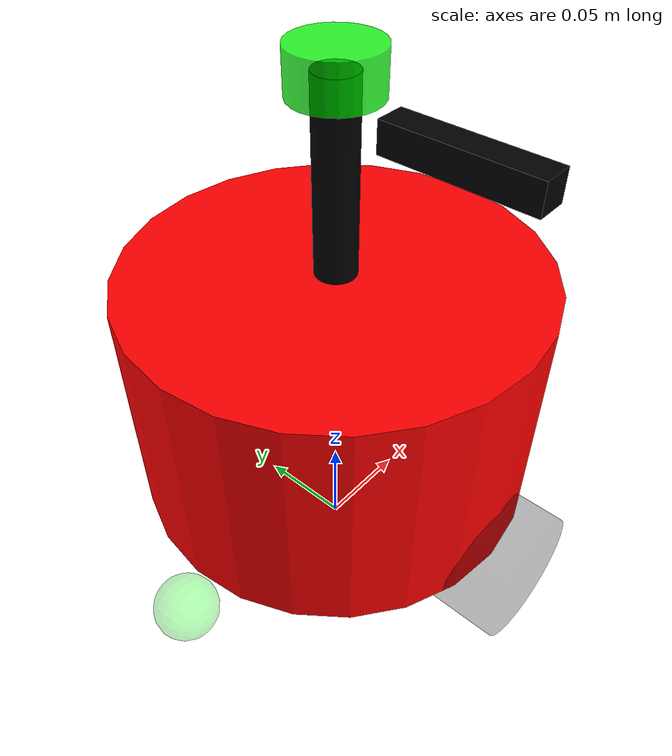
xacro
<?xml version="1.0"?>
<robot xmlns:xacro="http://www.ros.org/wiki/xacro" name="fishbot">
    <!-- 身体部分 -->
    <xacro:include filename="$(find fishbot_description)/urdf/fishbot/base.urdf.xacro" />

    <!-- 传感器组件 -->
    <xacro:include filename="$(find fishbot_description)/urdf/fishbot/sensor/imu.urdf.xacro" />
    <xacro:include filename="$(find fishbot_description)/urdf/fishbot/sensor/laser.urdf.xacro" />
    <xacro:include filename="$(find fishbot_description)/urdf/fishbot/sensor/camera.urdf.xacro" />

    <!-- 执行器部分 -->
    <xacro:include filename="$(find fishbot_description)/urdf/fishbot/actuator/wheel.urdf.xacro" />
    <xacro:include filename="$(find fishbot_description)/urdf/fishbot/actuator/caster.urdf.xacro" />

    <!-- gazebo插件 -->
    <xacro:include filename="$(find fishbot_description)/urdf/fishbot/plugins/gazebo_control_plugin.xacro" />
    <xacro:include filename="$(find fishbot_description)/urdf/fishbot/plugins/gazebo_sensor_plugin.xacro" />
    <xacro:include filename="$(find fishbot_description)/urdf/fishbot/fishbot.ros2_control.xacro" />

    <xacro:base_xacro length="0.12" radius="0.1" />
    <!-- 传感器 -->
    <xacro:imu_xacro xyz="0 0 0.02" />
    <xacro:laser_xacro xyz="0 0 0.10" />
    <xacro:camera_xacro xyz="0.10 0 0.075" />

    <xacro:wheel_xacro wheel_name="left_wheel" xyz="0 0.10 -0.06" />
    <xacro:wheel_xacro wheel_name="right_wheel" xyz="0 -0.10 -0.06" />
    <xacro:caster_xacro caster_name="front" xyz="0.11 0.0 -0.073" />  <!-- 前：外侧+抬高 -->
    <xacro:caster_xacro caster_name="back" xyz="-0.11 0.0 -0.079" />   <!-- 后：外侧+下沉 -->

    <xacro:gazebo_sensor_plugin />
    <xacro:fishbot_ros2_control />

</robot>

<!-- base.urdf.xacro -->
<robot xmlns:xacro="http://www.ros.org/wiki/xacro">
    <!-- 调用机器人的质量和惯性 -->
    <xacro:include filename="$(find fishbot_description)/urdf/fishbot/common_inertia.xacro" />

    <!-- 声明base模块 -->
    <xacro:macro name="base_xacro" params="length radius">
    <link name="base_footprint"/>
        <link name="base_link">

        <visual>
            <!-- 沿着自己几何中心的偏移和旋转量 -->
            <origin xyz="0.0 0.0 0.0" rpy="0.0 0.0 0.0"/>
            <geometry>
                <!-- 圆柱 半径0.10m 高度 length=0.12m -->
                <cylinder radius="${radius}" length="${length}"/>
                <!-- 圆柱 直径=0.2 -->
            </geometry>
            <material name="white">
                <color rgba="1.0 0.0 0.0 1"/>
            </material>
        </visual>
        <!-- 添加碰撞属性 -->
        <collision>
            <origin xyz="0.0 0.0 0.0" rpy="0.0 0.0 0.0"/>
            <geometry>
                <!-- 圆柱 半径0.10m 高度 length=0.12m -->
                <cylinder radius="${radius}" length="${length}"/>
                <!-- 圆柱 直径=0.2 -->
            </geometry>
            <material name="white">
                <color rgba="1.0 0.0 0.0 0.5"/>
            </material>
        </collision>
        <!-- 调用 质量为1.0千克 -->
        <xacro:cylinder_inertia m="1.0" r="${radius}" h="${length}"/>
    </link>

        <joint name="base_joint" type="fixed">
            <parent link="base_footprint"/>
            <child link="base_link"/>
            <origin xyz="0.0 0.0 ${length/2.0 + 0.05}"/>

        </joint>
    </xacro:macro>
</robot>

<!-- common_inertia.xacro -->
<robot xmlns:xacro="http://ros.org/wiki/xacro">

  <xacro:macro name="box_inertia" params="m w h d">
    <inertial>
      <mass value="${m}" />
      <inertia ixx="${(m/12) * (h*h + d*d)}" ixy="0.0" ixz="0.0" iyy="${(m/12) * (w*w + d*d)}" iyz="0.0" izz="${(m/12) * (w*w + h*h)}" />
    </inertial>
  </xacro:macro>

  <xacro:macro name="cylinder_inertia" params="m r h">
    <inertial>
      <mass value="${m}" />
      <inertia ixx="${(m/12) * (3*r*r + h*h)}" ixy="0" ixz="0" iyy="${(m/12) * (3*r*r + h*h)}" iyz="0" izz="${(m/2) * (r*r)}" />
    </inertial>
  </xacro:macro>

  <xacro:macro name="sphere_inertia" params="m r">
    <inertial>
      <mass value="${m}" />
      <inertia ixx="${(2/5) * m * (r*r)}" ixy="0.0" ixz="0.0" iyy="${(2/5) * m * (r*r)}" iyz="0.0" izz="${(2/5) * m * (r*r)}" />
    </inertial>
  </xacro:macro>

</robot>

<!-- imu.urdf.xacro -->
<robot xmlns:xacro="http://www.ros.org/wiki/xacro">
    <xacro:include filename="$(find fishbot_description)/urdf/fishbot/common_inertia.xacro" />

    <xacro:macro name="imu_xacro" params="xyz">
    <!-- 机器人IMU部件，惯性单元的容器 -->
     <link name="imu_link">
        <visual>
            <!-- 沿着自己几何中心的偏移和旋转量 -->
            <origin xyz="0.0 0.0 0.0" rpy="0.0 0.0 0.0"/>
            <geometry>
                <!-- 正方体 -->
                <box size="0.02 0.02 0.02"/>
            </geometry>
            <material name="black">
                <color rgba="0.0 0.0 0.0 0.5"/>
            </material>
        </visual>
        <!-- 添加碰撞属性 -->
        <collision>
            <!-- 沿着自己几何中心的偏移和旋转量 -->
            <origin xyz="0.0 0.0 0.0" rpy="0.0 0.0 0.0"/>
            <geometry>
                <!-- 正方体 -->
                <box size="0.02 0.02 0.02"/>
            </geometry>
            <material name="black">
                <color rgba="0.0 0.0 0.0 0.5"/>
            </material>
        </collision>

        <xacro:box_inertia m="0.05" w="0.02" h="0.02" d="0.02"/>
     </link>

     <joint name="imu_joint" type="fixed">
        <!-- 父链接 -->
        <parent link="base_link"/>
        <!-- 子链接 -->
        <child link="imu_link"/>
        <!-- 子关节在父关节上的偏移和旋转 -->
        <origin xyz="${xyz}" />
     </joint>
    </xacro:macro>
</robot>

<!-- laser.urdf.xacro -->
<robot xmlns:xacro="http://www.ros.org/wiki/xacro">
    <xacro:include filename="$(find fishbot_description)/urdf/fishbot/common_inertia.xacro" />

    <xacro:macro name="laser_xacro" params="xyz">
     <gazebo reference="laser_cylinder_link">
        <material> Gazebo/Black</material>
     </gazebo>
     <gazebo reference="laser_link">
        <material> Gazebo/Blue</material>
     </gazebo>

    <!-- 雷达支撑杆 -->
     <link name="laser_cylinder_link">
        <visual>
            <!-- 沿着自己几何中心的偏移和旋转量 -->
            <origin xyz="0.0 0.0 0.0" rpy="0.0 0.0 0.0"/>
            <geometry>
                <!-- 正方体 -->
                <cylinder radius="0.01" length="0.10"/>
            </geometry>
            <material name="blue">
                <color rgba="0.0 0.0 0.0 1.0"/>
            </material>
        </visual>
        <!-- 添加碰撞属性 -->
        <collision>
            <!-- 沿着自己几何中心的偏移和旋转量 -->
            <origin xyz="0.0 0.0 0.0" rpy="0.0 0.0 0.0"/>
            <geometry>
                <!-- 圆柱体 -->
                <cylinder radius="0.01" length="0.10"/>
            </geometry>
            <material name="blue">
                <color rgba="0.0 0.0 0.0 1.0"/>
            </material>
        </collision>
         <link name="base_link"/>
        <xacro:cylinder_inertia m="0.05" r="0.01" h="0.10"/>
     </link>

    <link name="laser_link">
        <visual>
            <!-- 沿着自己几何中心的偏移和旋转量 -->
            <origin xyz="0.0 0.0 0.0" rpy="0.0 0.0 0.0"/>
            <geometry>
                <!-- 圆形 -->
                <cylinder radius="0.02" length="0.02"/>
            </geometry>
            <material name="green">
                <color rgba="0.0 1.0 0.0 0.8"/>
            </material>
        </visual>
        <!-- 添加碰撞属性 -->
        <collision>
            <!-- 沿着自己几何中心的偏移和旋转量 -->
            <origin xyz="0.0 0.0 0.0" rpy="0.0 0.0 0.0"/>
            <geometry>
                <!-- 圆形 -->
                <cylinder radius="0.02" length="0.02"/>
            </geometry>
            <material name="green">
                <color rgba="0.0 1.0 0.0 0.8"/>
            </material>
        </collision>

        <xacro:cylinder_inertia m="0.10" r="0.02" h="0.02"/>
    </link>

    <!-- 雷达固定到雷达支撑杆上 -->
     <joint name="laser_joint" type="fixed">
        <!-- 父链接 -->
        <parent link="laser_cylinder_link"/>
        <!-- 子链接 -->
        <child link="laser_link"/>
        <!-- 子关节在父关节上的偏移和旋转 -->
        <origin xyz="0 0 0.05" />
    </joint>

    <joint name="laser_cylinder_joint" type="fixed">
        <!-- 父链接 -->
        <parent link="base_link"/>
        <!-- 子链接 -->
        <child link="laser_cylinder_link"/>
        <!-- 子关节在父关节上的偏移和旋转 -->
        <!-- 让用的人去改雷达支撑杆上的长度 -->
        <origin xyz="${xyz}" />

     </joint>
    </xacro:macro>
</robot>

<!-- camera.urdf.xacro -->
<robot xmlns:xacro="http://www.ros.org/wiki/xacro">
<xacro:include filename="$(find fishbot_description)/urdf/fishbot/common_inertia.xacro" />
    <xacro:macro name="camera_xacro" params="xyz">
    <!-- 机器人IMU部件（注释笔误，可改成“相机部件”） -->
     <link name="camera_link"> <!-- 改：唯一名称，不会和任何文件重复 -->
        <visual>
            <origin xyz="0.0 0.0 0.0" rpy="0.0 0.0 0.0"/>
            <geometry>
                <box size="0.02 0.10 0.02"/>
            </geometry>
            <material name="black">
                <color rgba="0.0 0.0 0.0 1"/>
            </material>
        </visual>
        <!-- 添加碰撞属性 -->
        <collision>
        <origin xyz="0.0 0.0 0.0" rpy="0.0 0.0 0.0"/>
            <geometry>
                <box size="0.02 0.10 0.02"/>
            </geometry>
        </collision>

     <xacro:box_inertia m="0.05" w="0.04" h="0.04" d="0.04"/>
     </link>

         <!-- 深度相机传感器仿真 -->
    <link name="camera_optical_link"></link>
    <!-- 机器人关节 -->
     <joint name="fishbot_camera_joint" type="fixed"> <!-- 改：对应唯一关节名 -->
        <parent link="base_link"/>
        <child link="camera_link"/> <!-- 匹配上面的link名 -->
        <origin xyz="${xyz}" rpy="0.0 0.0 0.0"/> <!-- 补rpy，规范且不报错 -->
     </joint>

     <joint name="camera_optical_joint" type="fixed">
        <parent link="camera_link"/>
        <child link="camera_optical_link"/>
        <origin xyz="0 0 0" rpy="${-pi/2} 0.0 ${-pi/2}"/>
     </joint>
    </xacro:macro>
</robot>

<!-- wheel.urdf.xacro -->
<robot xmlns:xacro="http://www.ros.org/wiki/xacro">
    <xacro:include filename="$(find fishbot_description)/urdf/fishbot/common_inertia.xacro" />

    <xacro:macro name="wheel_xacro" params="wheel_name xyz">

     <gazebo reference="${wheel_name}_link">
        <mu1 value="20.0" />
        <mu2 value="20.0" />
        <kp value="500000.0" />
        <kd value="1.0" />
        <material> Gazebo/Black</material>
     </gazebo>

     <link name="${wheel_name}_link">
        <visual>
            <!-- 沿着自己几何中心的偏移和旋转量 -->
            <origin xyz="0.0 0.0 0.0" rpy="1.57079 0.0 0.0"/>
                <!-- 圆柱体 -->
                <geometry>
                    <cylinder radius="0.032" length="0.04"/>
                </geometry>
            <!-- R（Red）：红色占比
                    G（Green）：绿色占比
                    B（Blue）：蓝色占比
                    A（Alpha）：透明度（1.0 完全不透明，0.0 完全透明 -->
            <material name="black">
                <color rgba="0.0 0.0 0.0 0.3"/>
            </material>
        </visual>
        <!-- 添加碰撞属性 -->
        <collision>
         <!-- 沿着自己几何中心的偏移和旋转量 -->
            <origin xyz="0.0 0.0 0.0" rpy="1.57079 0.0 0.0"/>
                <!-- 圆柱体 -->
                <geometry>
                    <cylinder radius="0.032" length="0.04"/>
                </geometry>
        </collision>

        <xacro:cylinder_inertia m="0.1" r="0.032" h="0.04"/>
     </link>

     <joint name="${wheel_name}_joint" type="continuous">
        <!-- 父链接 -->
        <parent link="base_link"/>
        <!-- 子链接 -->
        <child link="${wheel_name}_link"/>
        <!-- 子关节在父关节上的偏移和旋转 -->
        <origin xyz="${xyz}" rpy="0 0 0"/>
        <!-- 表示旋转轴和方向 -->
        <axis xyz="0.0 1.0 0.0"/>
     </joint>
    </xacro:macro>
</robot>

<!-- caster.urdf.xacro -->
<robot xmlns:xacro="http://www.ros.org/wiki/xacro">
    <xacro:include filename="$(find fishbot_description)/urdf/fishbot/common_inertia.xacro" />

    <xacro:macro name="caster_xacro" params="caster_name xyz">
     <link name="${caster_name}_link">

     <gazebo reference="${caster_name}_link">
        <mu1 value="0.0" />
        <mu2 value="0.0" />d
        <kp value="50000.0" />
        <kd value="1.0" />

     </gazebo>
        <visual>
            <!-- 沿着自己几何中心的偏移和旋转量 -->
            <origin xyz="0.0 0.0 0.0" rpy="1.57079 0.0 0.0"/>
                <!-- 圆球 -->
                    <geometry>
                        <sphere radius="0.016"/>
                    </geometry>
            <!-- R（Red）：红色占比
                    G（Green）：绿色占比
                    B（Blue）：蓝色占比
                    A（Alpha）：透明度（1.0 完全不透明，0.0 完全透明 -->
            <material name="blue">
                <color rgba="0.0 1.0 0.0 0.3"/>
            </material>
        </visual>
        <!-- 添加碰撞属性 -->
        <collision>
         <!-- 沿着自己几何中心的偏移和旋转量 -->
            <origin xyz="0.0 0.0 0.0" rpy="1.57079 0.0 0.0"/>
                <!-- 圆球 -->
                    <geometry>
                        <sphere radius="0.016"/>
                    </geometry>
            <!-- R（Red）：红色占比
                    G（Green）：绿色占比
                    B（Blue）：蓝色占比
                    A（Alpha）：透明度（1.0 完全不透明，0.0 完全透明 -->
            <material name="blue">
                <color rgba="0.0 1.0 0.0 0.3"/>
            </material>
        </collision>

        <xacro:sphere_inertia m="0.05" r="0.016" />
     </link>

     <joint name="${caster_name}_joint" type="fixed">
        <!-- 父链接 -->
        <parent link="base_link"/>
        <!-- 子链接 -->
        <child link="${caster_name}_link"/>
        <!-- 子关节在父关节上的偏移和旋转 -->
        <origin xyz="${xyz}" rpy="0 0 0"/>
        <!-- 表示旋转轴和方向 -->
        <axis xyz="0.0 0.0 0.0"/>
     </joint>
    </xacro:macro>
</robot>
